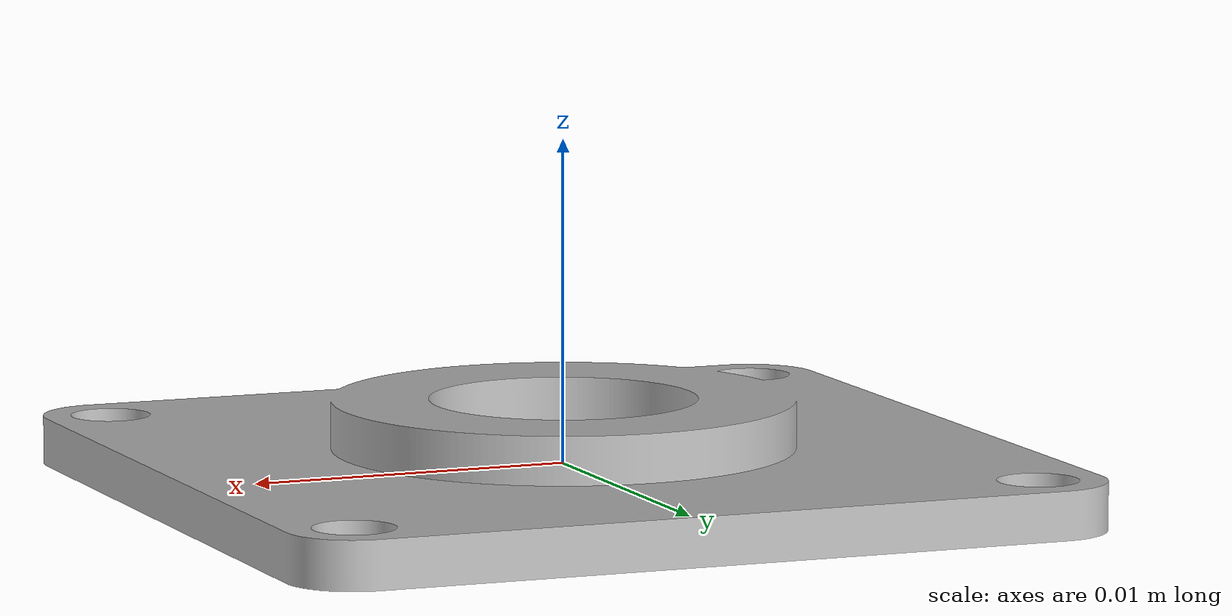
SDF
<?xml version="1.0" ?>
<sdf version="1.5">
  <model name="cover">
    <static>false</static>
    <link name="link">
      <collision name="collision">
        <geometry>
          <mesh>
            <scale>1 1 1</scale>
            <uri>model://Planetary/cover/cover.dae</uri>
          </mesh>
        </geometry>
      </collision>
      <visual name="visual">
        <geometry>
          <mesh>
            <scale>1 1 1</scale>
            <uri>model://Planetary/cover/cover.dae</uri>
          </mesh>
        </geometry>
      </visual>
    </link>
  </model>
</sdf>
